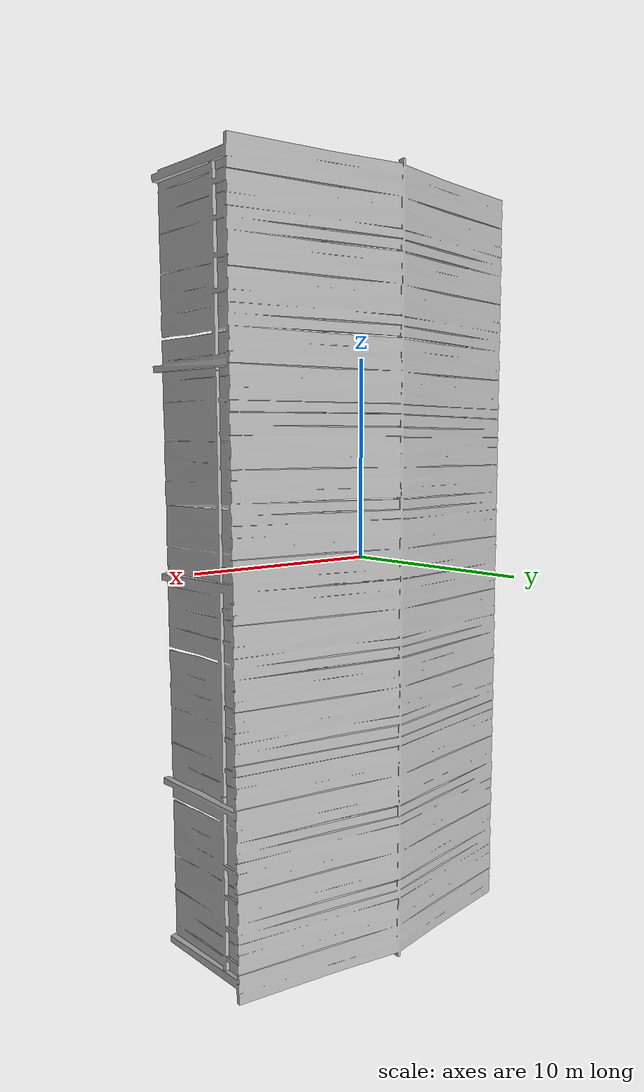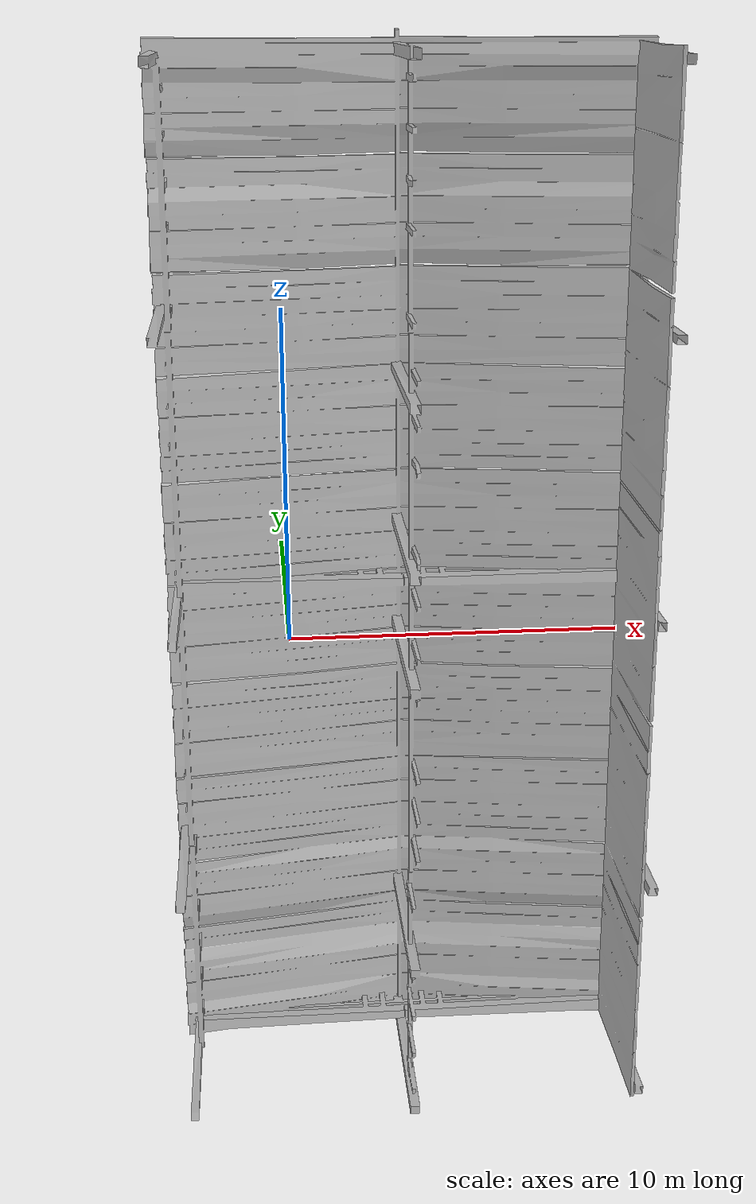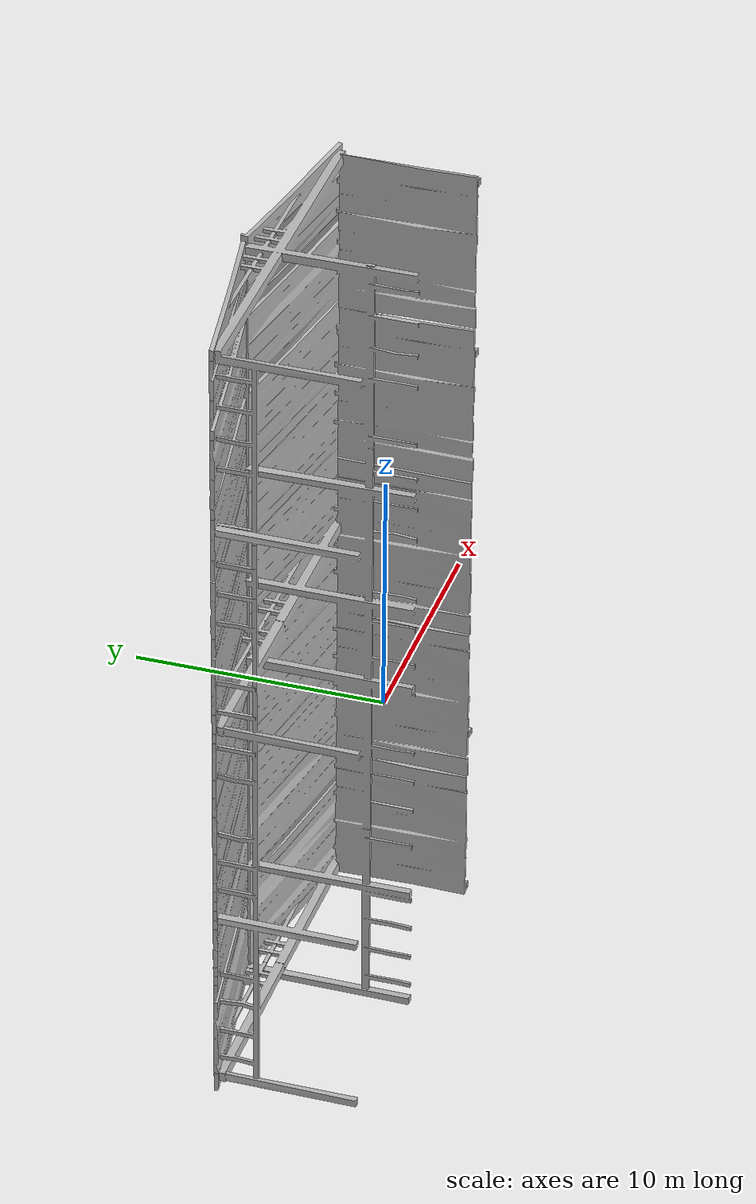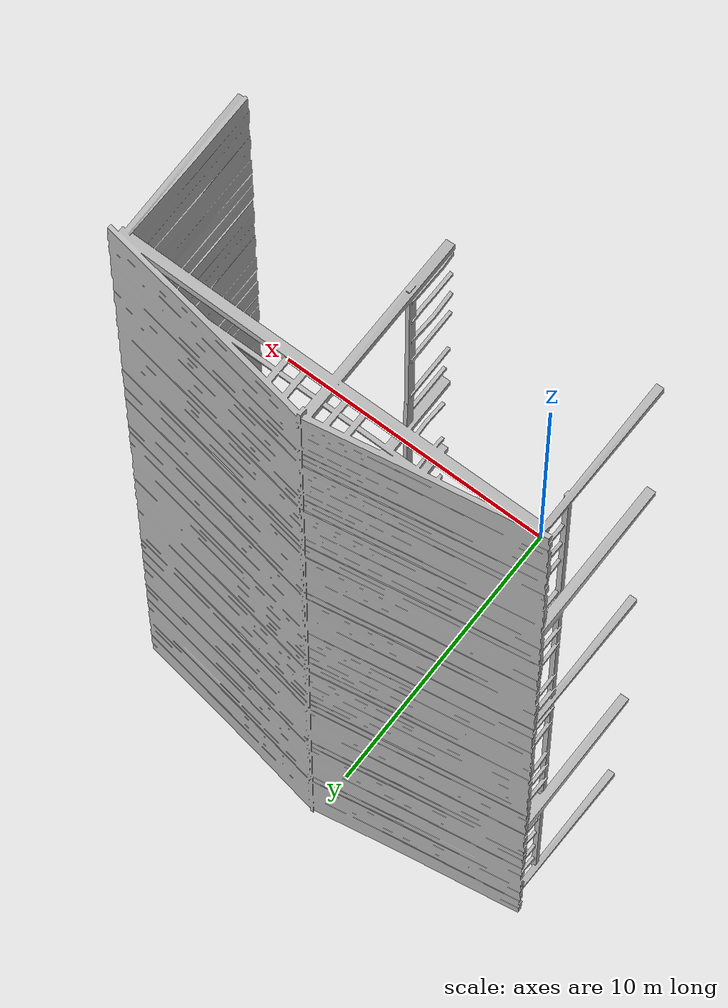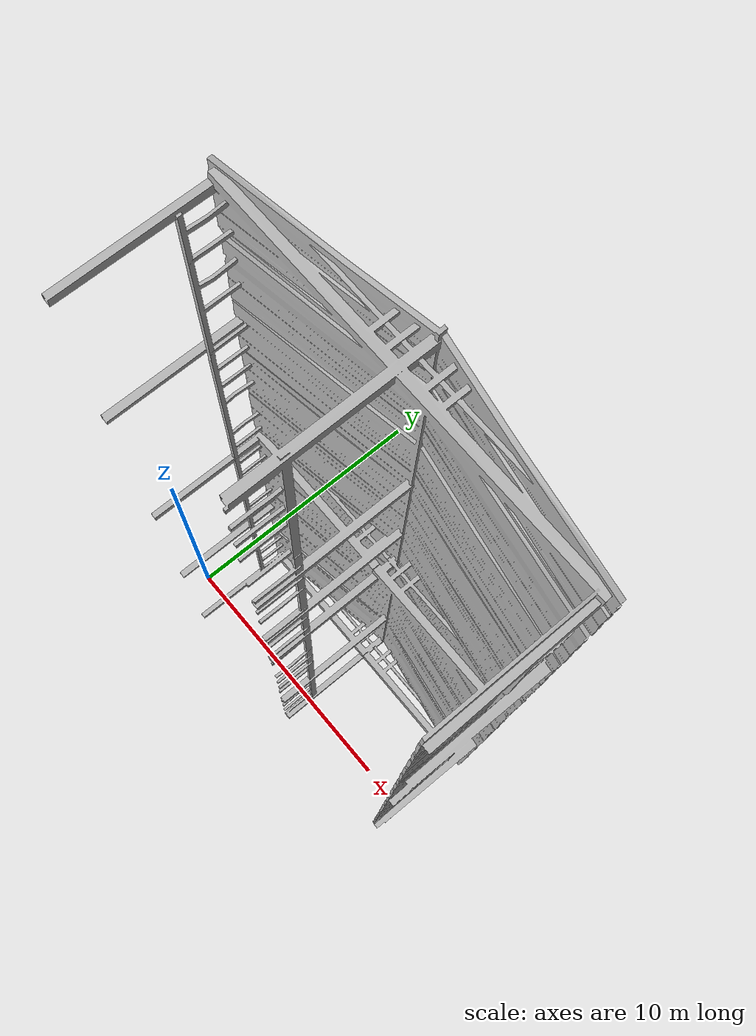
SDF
<?xml version="1.0" ?>
<sdf version="1.5">
  <model name="barn_model">
    <link name="link">
      <inertial>
        <pose>0 0 0 1.57079632679 0 0</pose>
        <mass>1.0</mass>
        <inertia>
          <ixx>24.88</ixx>
          <ixy>0</ixy>
          <ixz>0</ixz>
          <iyy>25.73</iyy>
          <iyz>0</iyz>
          <izz>2.48</izz>
        </inertia>
      </inertial>

      <collision name="bottom">
        <pose>-0.1 -0.1 -0.1 1.57079632679 0 0</pose>
        <geometry>
          <box>
            <size>20.0 20.0 0.01</size>
          </box>
        </geometry>
      </collision>

      <collision name="barn">
        <pose>0 0 0 0 0 0</pose>
        <geometry>
          <mesh>
            <uri>model://barn/meshes/barn.obj</uri>
          </mesh>
        </geometry>
      </collision>

      <visual name="visual">
        <pose>0 0 0 0 0 0</pose>
        <geometry>
          <mesh>
            <uri>model://barn/meshes/barn.obj</uri>
          </mesh>
        </geometry>
      </visual>
    </link>
  </model>
</sdf>
